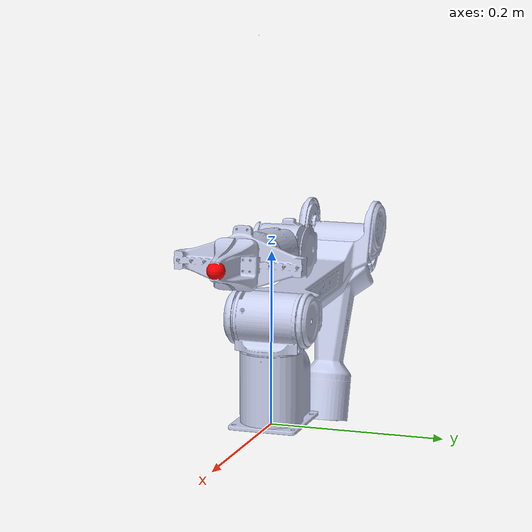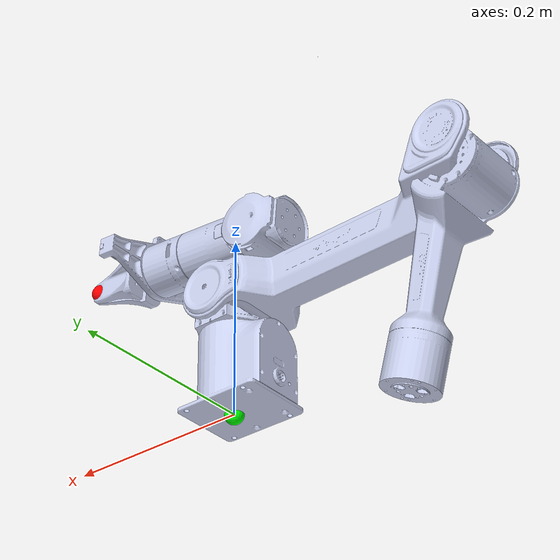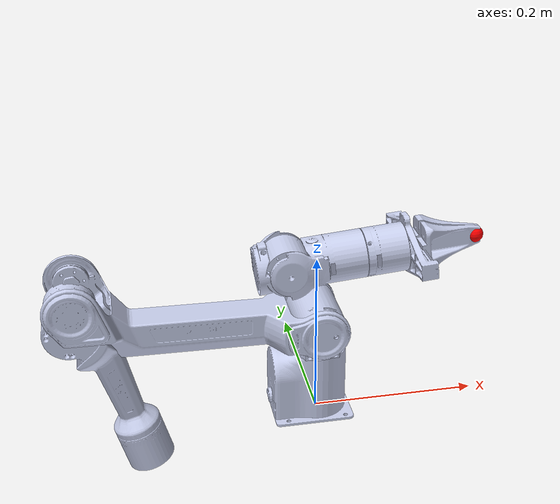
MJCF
<mujoco model="piper_description">
  <compiler angle="radian" meshdir="./meshes/"/>

  <option timestep="0.002" iterations="50" solver="Newton" tolerance="1e-10" gravity="0 0 -9.81"/>

  <default>
    <joint damping="0.5" armature="0.01"/>
    <geom friction="1 0.1 0.1" solimp="0.9 0.95 0.001" solref="0.005 1"/>
  </default>

  <asset>
    <mesh name="base_link" file="base_link.STL"/>
    <mesh name="link1" file="link1.STL"/>
    <mesh name="link2" file="link2.STL"/>
    <mesh name="link3" file="link3.STL"/>
    <mesh name="link4" file="link4.STL"/>
    <mesh name="link5" file="link5.STL"/>
    <mesh name="link6" file="link6.STL"/>
    <mesh name="link7" file="link7.STL"/>
    <mesh name="link8" file="link8.STL"/>
  </asset>

  <worldbody>
    <geom type="mesh" rgba="0.792157 0.819608 0.933333 1" mesh="base_link"/>
    <body name="link1" pos="0 0 0.123" quat="0.707105 0 0 -0.707108">
      <inertial pos="0.00131676 0.000310289 -0.00922875" quat="0.557105 0.432155 0.377373 0.600388" mass="0.097868" diaginertia="9.25942e-05 8.3083e-05 7.69469e-05"/>
      <joint name="joint1" pos="0 0 0" axis="0 0 1" range="-2.618 2.618" actuatorfrcrange="-100 100"/>
      <geom type="mesh" rgba="0.792157 0.819608 0.933333 1" mesh="link1"/>
      <body name="link2" quat="0.524588 0.474136 -0.524592 -0.474136">
        <inertial pos="0.147616 -0.017426 0.00175953" quat="0.0107531 0.706346 -0.0276284 0.707246" mass="0.289571" diaginertia="0.00177449 0.0017305 0.000145443"/>
        <joint name="joint2" pos="0 0 0" axis="0 0 1" range="0 3.14" actuatorfrcrange="-100 100"/>
        <geom type="mesh" rgba="0.792157 0.819608 0.933333 1" mesh="link2"/>
        <body name="link3" pos="0.28503 0 0" quat="0.770418 0 0 0.637539">
          <inertial pos="0.0156727 0.104467 0.000508487" quat="0.506574 0.477898 -0.524055 0.490268" mass="0.290583" diaginertia="0.000241862 0.000222142 0.000100381"/>
          <joint name="joint3" pos="0 0 0" axis="0 0 1" range="-2.967 0" actuatorfrcrange="-100 100"/>
          <geom type="mesh" rgba="0.792157 0.819608 0.933333 1" mesh="link3"/>
          <body name="link4" pos="0.021984 0.25075 0" quat="0.707105 -0.707108 0 0">
            <inertial pos="0.000276465 -0.00102804 -0.00472831" quat="0.492305 0.505285 0.503294 0.499017" mass="0.127087" diaginertia="4.87057e-05 4.10595e-05 3.82001e-05"/>
            <joint name="joint4" pos="0 0 0" axis="0 0 1" range="-1.832 1.832" actuatorfrcrange="-100 100"/>
            <geom type="mesh" rgba="0.792157 0.819608 0.933333 1" mesh="link4"/>
            <body name="link5" quat="0.707105 0.707108 0 0">
              <inertial pos="8.82261e-05 0.0566829 -0.00196119" quat="0.507447 0.490986 0.506887 0.494466" mass="0.144711" diaginertia="5.63237e-05 4.88652e-05 4.39642e-05"/>
              <joint name="joint5" pos="0 0 0" axis="0 0 1" range="-1.22 1.22" actuatorfrcrange="-100 100"/>
              <geom type="mesh" rgba="0.792157 0.819608 0.933333 1" mesh="link5"/>
              <body name="link6" pos="0 0.091 0.0014165" quat="0.499998 -0.5 -0.5 -0.500002">
                <inertial pos="9.41121e-09 0.00034121 0.0342123" quat="0.00199308 0.707103 0.00226857 0.707104" mass="0.150196" diaginertia="0.000118283 9.9975e-05 4.3175e-05"/>
                <joint name="joint6" pos="0 0 0" axis="0 0 -1" range="-3.14 3.14" actuatorfrcrange="-100 100"/>
                <geom type="mesh" rgba="0.792157 0.819608 0.933333 1" mesh="link6"/>
                <body name="link7" pos="0 0 0.13503" quat="0.499998 0.5 0.500002 0.5">
                  <inertial pos="-0.000277796 -0.0467674 -0.0092103" quat="0.46134 0.536174 -0.553273 0.439968" mass="0.0264823" diaginertia="1.45134e-05 1.0004e-05 5.87021e-06"/>
                  <joint name="joint7" pos="0 0 0" axis="0 0 -1" type="slide" range="0 0.04" actuatorfrcrange="-100 100"/>
                  <geom type="mesh" rgba="0.792157 0.819608 0.933333 1" mesh="link7"/>
                </body>
                <body name="link8" pos="0 0 0.13503" quat="0.499998 -0.5 -0.500002 0.5">
                  <inertial pos="0.000277796 0.0467674 -0.0092103" quat="0.553273 0.439968 -0.46134 0.536174" mass="0.0264822" diaginertia="1.45133e-05 1.0004e-05 5.87021e-06"/>
                  <joint name="joint8" pos="0 0 0" axis="0 0 1" type="slide" range="-0.04 0" actuatorfrcrange="-100 100"/>
                  <geom type="mesh" rgba="0.792157 0.819608 0.933333 1" mesh="link8"/>
                </body>
                <body name="ee_link" pos="0 0 0.135" euler="-1.5707963 0 -1.5707963">
                  <site name="ee_site" pos="0 0 0" size="0.01" rgba="1 0 0 1" type="sphere"/>
                </body>
              </body>
            </body>
          </body>
        </body>
      </body>
    </body>
    <!-- Trajectory visualization sites (world frame) -->
    <site name="traj_target" pos="0 0 0" size="0.01" rgba="0 1 0 0.9" type="sphere"/>

    <!-- Camera for video rendering - wide angle view to see full robot -->
    <camera name="video_camera" pos="0.6 -0.8 0.6" xyaxes="0.8 0.4 0 0.4 -0.8 0" mode="fixed"/>
  </worldbody>

  <actuator>
    <!-- Position actuators for revolute joints -->
    <position name="joint1_pos" joint="joint1" kp="100" ctrlrange="-2.618 2.618"/>
    <position name="joint2_pos" joint="joint2" kp="100" ctrlrange="0 3.14"/>
    <position name="joint3_pos" joint="joint3" kp="100" ctrlrange="-2.967 0"/>
    <position name="joint4_pos" joint="joint4" kp="100" ctrlrange="-1.832 1.832"/>
    <position name="joint5_pos" joint="joint5" kp="100" ctrlrange="-1.22 1.22"/>
    <position name="joint6_pos" joint="joint6" kp="100" ctrlrange="-3.14 3.14"/>

    <!-- Position actuators for prismatic (slide) joints -->
    <position name="joint7_pos" joint="joint7" kp="1000" ctrlrange="0 0.04"/>
    <position name="joint8_pos" joint="joint8" kp="1000" ctrlrange="-0.04 0"/>

    <!-- Velocity actuators for all joints for more stable control -->
    <velocity name="joint1_vel" joint="joint1" kv="10" ctrlrange="-5 5"/>
    <velocity name="joint2_vel" joint="joint2" kv="10" ctrlrange="-5 5"/>
    <velocity name="joint3_vel" joint="joint3" kv="10" ctrlrange="-5 5"/>
    <velocity name="joint4_vel" joint="joint4" kv="10" ctrlrange="-5 5"/>
    <velocity name="joint5_vel" joint="joint5" kv="10" ctrlrange="-5 5"/>
    <velocity name="joint6_vel" joint="joint6" kv="10" ctrlrange="-5 5"/>
    <velocity name="joint7_vel" joint="joint7" kv="10" ctrlrange="-1 1"/>
    <velocity name="joint8_vel" joint="joint8" kv="10" ctrlrange="-1 1"/>
  </actuator>
</mujoco>
